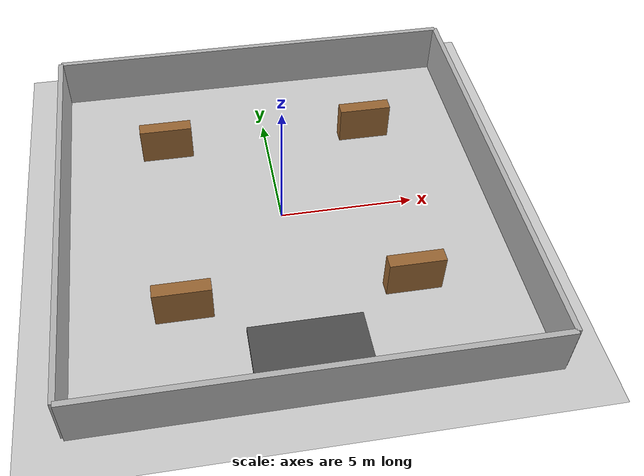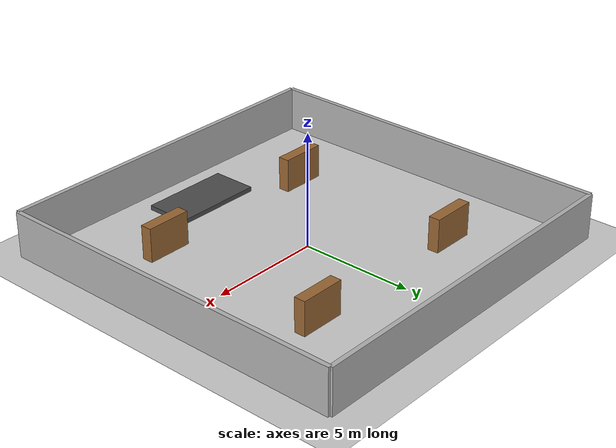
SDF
<?xml version="1.0" ?>
<sdf version="1.6">
  <world name="warehouse">

    <!-- Physics settings -->
    <physics name="default_physics" default="0" type="ode">
      <max_step_size>0.001</max_step_size>
      <real_time_factor>1.0</real_time_factor>
      <real_time_update_rate>1000</real_time_update_rate>
    </physics>

    <!-- Lighting -->
    <light name="sun" type="directional">
      <cast_shadows>1</cast_shadows>
      <pose>0 0 10 0 0 0</pose>
      <diffuse>0.8 0.8 0.8 1</diffuse>
      <specular>0.2 0.2 0.2 1</specular>
      <attenuation>
        <range>1000</range>
        <constant>0.9</constant>
        <linear>0.01</linear>
        <quadratic>0.001</quadratic>
      </attenuation>
      <direction>-0.5 0.1 -0.9</direction>
    </light>

    <!-- Ground plane -->
    <model name="ground_plane">
      <static>true</static>
      <link name="link">
        <collision name="collision">
          <geometry>
            <plane>
              <normal>0 0 1</normal>
              <size>20 20</size>
            </plane>
          </geometry>
        </collision>
        <visual name="visual">
          <geometry>
            <plane>
              <normal>0 0 1</normal>
              <size>20 20</size>
            </plane>
          </geometry>
          <material>
            <ambient>0.8 0.8 0.8 1</ambient>
            <diffuse>0.8 0.8 0.8 1</diffuse>
            <specular>0.8 0.8 0.8 1</specular>
          </material>
        </visual>
      </link>
    </model>

    <!-- Warehouse walls -->
    <model name="wall_north">
      <static>true</static>
      <pose>0 8 1 0 0 0</pose>
      <link name="link">
        <collision name="collision">
          <geometry>
            <box>
              <size>16 0.2 2</size>
            </box>
          </geometry>
        </collision>
        <visual name="visual">
          <geometry>
            <box>
              <size>16 0.2 2</size>
            </box>
          </geometry>
          <material>
            <ambient>0.7 0.7 0.7 1</ambient>
            <diffuse>0.7 0.7 0.7 1</diffuse>
          </material>
        </visual>
      </link>
    </model>

    <model name="wall_south">
      <static>true</static>
      <pose>0 -8 1 0 0 0</pose>
      <link name="link">
        <collision name="collision">
          <geometry>
            <box>
              <size>16 0.2 2</size>
            </box>
          </geometry>
        </collision>
        <visual name="visual">
          <geometry>
            <box>
              <size>16 0.2 2</size>
            </box>
          </geometry>
          <material>
            <ambient>0.7 0.7 0.7 1</ambient>
            <diffuse>0.7 0.7 0.7 1</diffuse>
          </material>
        </visual>
      </link>
    </model>

    <model name="wall_east">
      <static>true</static>
      <pose>8 0 1 0 0 0</pose>
      <link name="link">
        <collision name="collision">
          <geometry>
            <box>
              <size>0.2 16 2</size>
            </box>
          </geometry>
        </collision>
        <visual name="visual">
          <geometry>
            <box>
              <size>0.2 16 2</size>
            </box>
          </geometry>
          <material>
            <ambient>0.7 0.7 0.7 1</ambient>
            <diffuse>0.7 0.7 0.7 1</diffuse>
          </material>
        </visual>
      </link>
    </model>

    <model name="wall_west">
      <static>true</static>
      <pose>-8 0 1 0 0 0</pose>
      <link name="link">
        <collision name="collision">
          <geometry>
            <box>
              <size>0.2 16 2</size>
            </box>
          </geometry>
        </collision>
        <visual name="visual">
          <geometry>
            <box>
              <size>0.2 16 2</size>
            </box>
          </geometry>
          <material>
            <ambient>0.7 0.7 0.7 1</ambient>
            <diffuse>0.7 0.7 0.7 1</diffuse>
          </material>
        </visual>
      </link>
    </model>

    <!-- Warehouse shelves -->
    <model name="shelf_a">
      <static>true</static>
      <pose>4 4 0.75 0 0 0</pose>
      <link name="link">
        <collision name="collision">
          <geometry>
            <box>
              <size>2 0.5 1.5</size>
            </box>
          </geometry>
        </collision>
        <visual name="visual">
          <geometry>
            <box>
              <size>2 0.5 1.5</size>
            </box>
          </geometry>
          <material>
            <ambient>0.6 0.4 0.2 1</ambient>
            <diffuse>0.6 0.4 0.2 1</diffuse>
          </material>
        </visual>
      </link>
    </model>

    <model name="shelf_b">
      <static>true</static>
      <pose>-4 4 0.75 0 0 0</pose>
      <link name="link">
        <collision name="collision">
          <geometry>
            <box>
              <size>2 0.5 1.5</size>
            </box>
          </geometry>
        </collision>
        <visual name="visual">
          <geometry>
            <box>
              <size>2 0.5 1.5</size>
            </box>
          </geometry>
          <material>
            <ambient>0.6 0.4 0.2 1</ambient>
            <diffuse>0.6 0.4 0.2 1</diffuse>
          </material>
        </visual>
      </link>
    </model>

    <model name="shelf_c">
      <static>true</static>
      <pose>4 -4 0.75 0 0 0</pose>
      <link name="link">
        <collision name="collision">
          <geometry>
            <box>
              <size>2 0.5 1.5</size>
            </box>
          </geometry>
        </collision>
        <visual name="visual">
          <geometry>
            <box>
              <size>2 0.5 1.5</size>
            </box>
          </geometry>
          <material>
            <ambient>0.6 0.4 0.2 1</ambient>
            <diffuse>0.6 0.4 0.2 1</diffuse>
          </material>
        </visual>
      </link>
    </model>

    <model name="shelf_d">
      <static>true</static>
      <pose>-4 -4 0.75 0 0 0</pose>
      <link name="link">
        <collision name="collision">
          <geometry>
            <box>
              <size>2 0.5 1.5</size>
            </box>
          </geometry>
        </collision>
        <visual name="visual">
          <geometry>
            <box>
              <size>2 0.5 1.5</size>
            </box>
          </geometry>
          <material>
            <ambient>0.6 0.4 0.2 1</ambient>
            <diffuse>0.6 0.4 0.2 1</diffuse>
          </material>
        </visual>
      </link>
    </model>

    <!-- Central loading area -->
    <model name="loading_dock">
      <static>true</static>
      <pose>0 -6 0.1 0 0 0</pose>
      <link name="link">
        <collision name="collision">
          <geometry>
            <box>
              <size>4 2 0.2</size>
            </box>
          </geometry>
        </collision>
        <visual name="visual">
          <geometry>
            <box>
              <size>4 2 0.2</size>
            </box>
          </geometry>
          <material>
            <ambient>0.3 0.3 0.3 1</ambient>
            <diffuse>0.3 0.3 0.3 1</diffuse>
          </material>
        </visual>
      </link>
    </model>

  </world>
</sdf>
